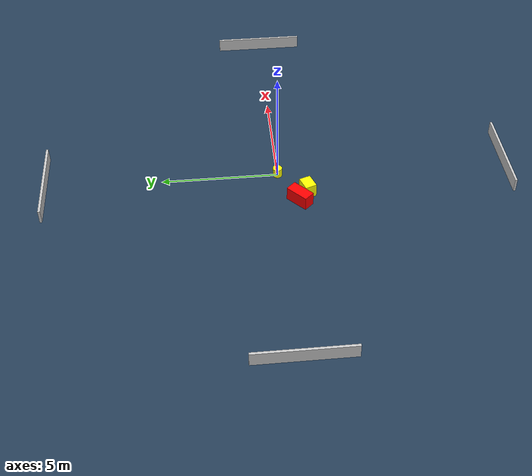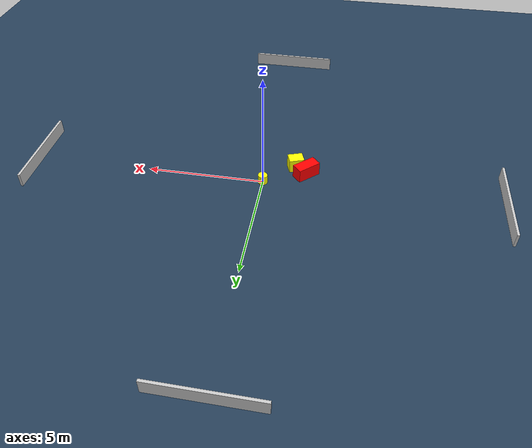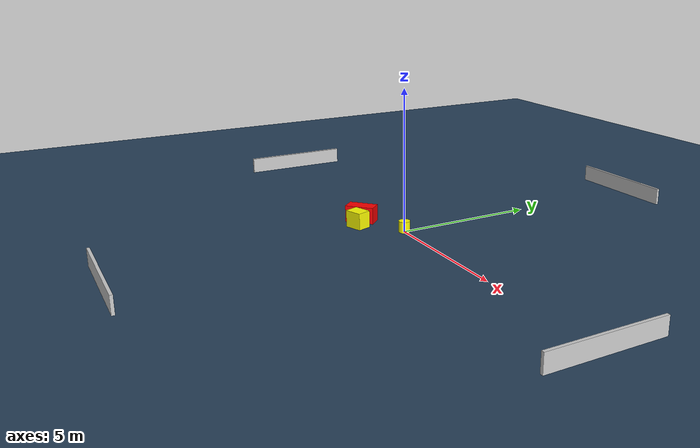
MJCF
<?xml version="1.0" ?>
<mujoco model="generated_environment">
  <option timestep="0.01" integrator="RK4" cone="elliptic"/>
  <default>
    <geom density="1"/>
  </default>
  <asset>
    <texture builtin="gradient" height="3072" name="skybox" rgb1="0.3 0.5 0.7" rgb2="0 0 0" type="skybox" width="512"/>
    <texture builtin="checker" height="300" name="groundplane" rgb1="0.2 0.3 0.4" rgb2="0.1 0.2 0.3" type="2d" width="300"/>
    <material name="groundplane" reflectance="0.2" texrepeat="5 5" texture="groundplane"/>
  </asset>
  <worldbody>
    <light dir="0 0 -1" directional="true" pos="0 0 1.5"/>
    <geom condim="3" friction="0.5 0.005 0.001" material="groundplane" name="floor" pos="0 0 0" size="0 0 0.05" type="plane"/>
    <body name="walls">
      <geom name="wall_1" condim="4" pos="-10.0 0.0 0.3" rgba="0.800000011920929 0.800000011920929 0.800000011920929 1.0" size="0.05 2.0 0.3" type="box"/>
      <geom name="wall_2" condim="4" pos="10.0 0.0 0.3" rgba="0.800000011920929 0.800000011920929 0.800000011920929 1.0" size="0.05 2.0 0.3" type="box"/>
      <geom name="wall_3" condim="4" pos="0.0 -10.0 0.3" rgba="0.800000011920929 0.800000011920929 0.800000011920929 1.0" size="2.0 0.05 0.3" type="box"/>
      <geom name="wall_4" condim="4" pos="0.0 10.0 0.3" rgba="0.800000011920929 0.800000011920929 0.800000011920929 1.0" size="2.0 0.05 0.3" type="box"/>
    </body>
    <body name="robot">
      <joint name="joint_x" type="slide" pos="0 0 0" axis="1 0 0"/>
      <joint name="joint_y" type="slide" pos="0 0 0" axis="0 1 0"/>
      <geom name="robot" type="cylinder" pos="0.0 0.0 0.2" size="0.2 0.2 0.0" mass="5.0" friction="1.0 0.005 0.0001" condim="4" rgba="1.0 1.0 0.0 1.0"/>
    </body>
    <body name="obstacle_1_movable">
      <geom name="obstacle_1_movable" condim="4" pos="-1.2539534779998383 -1.1753515352536699 0.3" euler="0 0 109.27641194011464" friction="0.0 0.005 0.001" rgba="1.0 1.0 0.0 1.0" size="0.2508427260329646 0.32253634436256606 0.3" type="box" mass="0.1"/>
      <joint type="free"/>
    </body>
    <body name="obstacle_2_static">
      <geom name="obstacle_2_static" condim="4" pos="-1.7612251468421436 -0.7846037274870233 0.3" euler="0 0 42.82683518550762" friction="0.0 0.005 0.001" rgba="1.0 0.0 0.0 1.0" size="0.5196936705148476 0.2503667344056672 0.3" type="box"/>
    </body>
  </worldbody>
  <actuator>
    <motor name="actuator_x" joint="joint_x" gear="1" ctrlrange="-1 1"/>
    <motor name="actuator_y" joint="joint_y" gear="1" ctrlrange="-1 1"/>
  </actuator>
</mujoco>
